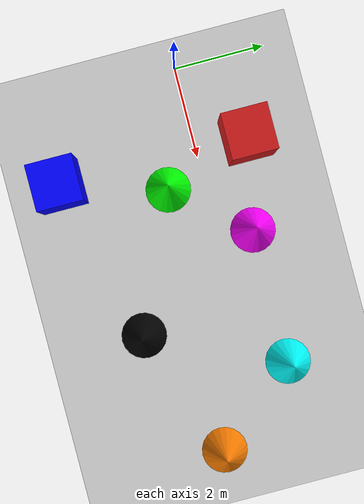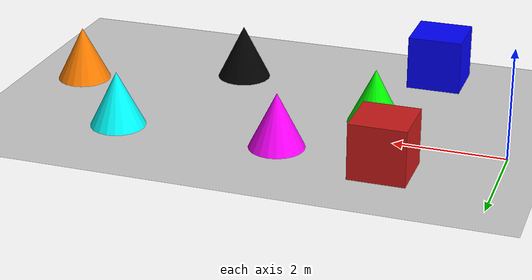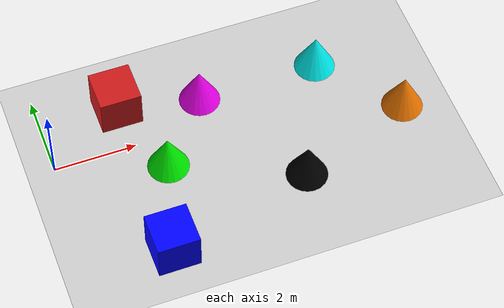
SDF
<sdf version='1.10'>
  <world name='robot_driver_world'>
    <physics name='1ms' type='ignored'>
      <max_step_size>0.001</max_step_size>
      <real_time_factor>1</real_time_factor>
      <real_time_update_rate>1000</real_time_update_rate>
    </physics>
    <plugin name='gz::sim::systems::Physics' filename='gz-sim-physics-system'/>
    <plugin name='gz::sim::systems::Sensors' filename='gz-sim-sensors-system'>
      <render_engine>ogre</render_engine>
    </plugin>
    <plugin name='gz::sim::systems::UserCommands' filename='gz-sim-user-commands-system'/>
    <plugin name='gz::sim::systems::SceneBroadcaster' filename='gz-sim-scene-broadcaster-system'/>
    <plugin name='gz::sim::systems::Contact' filename='gz-sim-contact-system'/>
    <gravity>0 0 -9.8000000000000007</gravity>
    <magnetic_field>5.5644999999999998e-06 2.2875799999999999e-05 -4.2388400000000002e-05</magnetic_field>
    <atmosphere type='adiabatic'/>
    <scene>
      <ambient>0.400000006 0.400000006 0.400000006 1</ambient>
      <background>0.699999988 0.699999988 0.699999988 1</background>
      <shadows>true</shadows>
    </scene>
    <model name='ground_plane'>
      <static>true</static>
      <link name='link'>
        <collision name='collision'>
          <geometry>
            <plane>
              <normal>0 0 1</normal>
              <size>100 100</size>
            </plane>
          </geometry>
          <surface>
            <friction>
              <ode/>
            </friction>
            <bounce/>
            <contact/>
          </surface>
        </collision>
        <visual name='visual'>
          <geometry>
            <plane>
              <normal>0 0 1</normal>
              <size>100 100</size>
            </plane>
          </geometry>
          <material>
            <ambient>0.800000012 0.800000012 0.800000012 1</ambient>
            <diffuse>0.800000012 0.800000012 0.800000012 1</diffuse>
            <specular>0.800000012 0.800000012 0.800000012 1</specular>
          </material>
        </visual>
        <pose>0 0 0 0 0 0</pose>
        <inertial>
          <pose>0 0 0 0 0 0</pose>
          <mass>1</mass>
          <inertia>
            <ixx>1</ixx>
            <ixy>0</ixy>
            <ixz>0</ixz>
            <iyy>1</iyy>
            <iyz>0</iyz>
            <izz>1</izz>
          </inertia>
        </inertial>
        <enable_wind>false</enable_wind>
      </link>
      <pose>0 0 0 0 0 0</pose>
      <self_collide>false</self_collide>
    </model>
    <model name='box'>
      <pose>1.8808799982070923 1.1179466247558594 0.5 0 0 0</pose>
      <link name='box_link'>
        <inertial>
          <inertia>
            <ixx>0.16666</ixx>
            <ixy>0</ixy>
            <ixz>0</ixz>
            <iyy>0.16666</iyy>
            <iyz>0</iyz>
            <izz>0.16666</izz>
          </inertia>
          <mass>1</mass>
          <pose>0 0 0 0 0 0</pose>
        </inertial>
        <collision name='box_collision'>
          <geometry>
            <box>
              <size>1 1 1</size>
            </box>
          </geometry>
          <surface>
            <friction>
              <ode/>
            </friction>
            <bounce/>
            <contact/>
          </surface>
        </collision>
        <visual name='box_visual'>
          <geometry>
            <box>
              <size>1 1 1</size>
            </box>
          </geometry>
          <material>
            <ambient>0.800000012 0.100000001 0.100000001 1</ambient>
            <diffuse>0.800000012 0.100000001 0.100000001 1</diffuse>
            <specular>1 1 1 1</specular>
          </material>
        </visual>
        <pose>0 0 0 0 0 0</pose>
        <enable_wind>false</enable_wind>
      </link>
      <static>false</static>
      <self_collide>false</self_collide>
    </model>
    <model name='cone'>
      <pose>2.5363800525665283 -0.80112278461456299 0.5 0 0 0</pose>
      <link name='cone_link'>
        <inertial>
          <inertia>
            <ixx>0.074999999999999997</ixx>
            <ixy>0</ixy>
            <ixz>0</ixz>
            <iyy>0.074999999999999997</iyy>
            <iyz>0</iyz>
            <izz>0.074999999999999997</izz>
          </inertia>
          <mass>1</mass>
          <pose>0 0 0 0 0 0</pose>
        </inertial>
        <collision name='cone_collision'>
          <geometry>
            <cone>
              <radius>0.5</radius>
              <length>1</length>
            </cone>
          </geometry>
          <surface>
            <friction>
              <ode/>
            </friction>
            <bounce/>
            <contact/>
          </surface>
        </collision>
        <visual name='cone_visual'>
          <geometry>
            <cone>
              <radius>0.5</radius>
              <length>1</length>
            </cone>
          </geometry>
          <material>
            <ambient>0 1 0 1</ambient>
            <diffuse>0 1 0 1</diffuse>
            <specular>1 1 1 1</specular>
          </material>
        </visual>
        <pose>0 0 0 0 0 0</pose>
        <enable_wind>false</enable_wind>
      </link>
      <static>false</static>
      <self_collide>false</self_collide>
    </model>
    <model name='box_0'>
      <pose>1.8804613351821899 -3.0615699291229248 0.5 0 0 0</pose>
      <link name='box_link'>
        <inertial>
          <inertia>
            <ixx>0.16666</ixx>
            <ixy>0</ixy>
            <ixz>0</ixz>
            <iyy>0.16666</iyy>
            <iyz>0</iyz>
            <izz>0.16666</izz>
          </inertia>
          <mass>1</mass>
          <pose>0 0 0 0 0 0</pose>
        </inertial>
        <collision name='box_collision'>
          <geometry>
            <box>
              <size>1 1 1</size>
            </box>
          </geometry>
          <surface>
            <friction>
              <ode/>
            </friction>
            <bounce/>
            <contact/>
          </surface>
        </collision>
        <visual name='box_visual'>
          <geometry>
            <box>
              <size>1 1 1</size>
            </box>
          </geometry>
          <material>
            <ambient>0 0 1 1</ambient>
            <diffuse>0 0 1 1</diffuse>
            <specular>1 1 1 1</specular>
          </material>
        </visual>
        <pose>0 0 0 0 0 0</pose>
        <enable_wind>false</enable_wind>
      </link>
      <static>false</static>
      <self_collide>false</self_collide>
    </model>
    <model name='cone_1'>
      <pose>3.8625099658966064 0.77272200584411621 0.5 0 0 0</pose>
      <link name='cone_link'>
        <inertial>
          <inertia>
            <ixx>0.074999999999999997</ixx>
            <ixy>0</ixy>
            <ixz>0</ixz>
            <iyy>0.074999999999999997</iyy>
            <iyz>0</iyz>
            <izz>0.074999999999999997</izz>
          </inertia>
          <mass>1</mass>
          <pose>0 0 0 0 0 0</pose>
        </inertial>
        <collision name='cone_collision'>
          <geometry>
            <cone>
              <radius>0.5</radius>
              <length>1</length>
            </cone>
          </geometry>
          <surface>
            <friction>
              <ode/>
            </friction>
            <bounce/>
            <contact/>
          </surface>
        </collision>
        <visual name='cone_visual'>
          <geometry>
            <cone>
              <radius>0.5</radius>
              <length>1</length>
            </cone>
          </geometry>
          <material>
            <ambient>1 0 1 1</ambient>
            <diffuse>1 0 1 1</diffuse>
            <specular>1 1 1 1</specular>
          </material>
        </visual>
        <pose>0 0 0 0 0 0</pose>
        <enable_wind>false</enable_wind>
      </link>
      <static>false</static>
      <self_collide>false</self_collide>
    </model>
    <model name='cone_2'>
      <pose>5.4945001602172852 -2.1261203289031982 0.5 0 0 0</pose>
      <link name='cone_link'>
        <inertial>
          <inertia>
            <ixx>0.074999999999999997</ixx>
            <ixy>0</ixy>
            <ixz>0</ixz>
            <iyy>0.074999999999999997</iyy>
            <iyz>0</iyz>
            <izz>0.074999999999999997</izz>
          </inertia>
          <mass>1</mass>
          <pose>0 0 0 0 0 0</pose>
        </inertial>
        <collision name='cone_collision'>
          <geometry>
            <cone>
              <radius>0.5</radius>
              <length>1</length>
            </cone>
          </geometry>
          <surface>
            <friction>
              <ode/>
            </friction>
            <bounce/>
            <contact/>
          </surface>
        </collision>
        <visual name='cone_visual'>
          <geometry>
            <cone>
              <radius>0.5</radius>
              <length>1</length>
            </cone>
          </geometry>
          <material>
            <ambient>0 0 0 1</ambient>
            <diffuse>0 0 0 1</diffuse>
            <specular>1 1 1 1</specular>
          </material>
        </visual>
        <pose>0 0 0 0 0 0</pose>
        <enable_wind>false</enable_wind>
      </link>
      <static>false</static>
      <self_collide>false</self_collide>
    </model>
    <model name='cone_3'>
      <pose>6.8430712037895347 0.78498223336601658 0.5 0 0 0</pose>
      <link name='cone_link'>
        <inertial>
          <inertia>
            <ixx>0.074999999999999997</ixx>
            <ixy>0</ixy>
            <ixz>0</ixz>
            <iyy>0.074999999999999997</iyy>
            <iyz>0</iyz>
            <izz>0.074999999999999997</izz>
          </inertia>
          <mass>1</mass>
          <pose>0 0 0 0 0 0</pose>
        </inertial>
        <collision name='cone_collision'>
          <geometry>
            <cone>
              <radius>0.5</radius>
              <length>1</length>
            </cone>
          </geometry>
          <surface>
            <friction>
              <ode/>
            </friction>
            <bounce/>
            <contact/>
          </surface>
        </collision>
        <visual name='cone_visual'>
          <geometry>
            <cone>
              <radius>0.5</radius>
              <length>1</length>
            </cone>
          </geometry>
          <material>
            <ambient>0 1 1 1</ambient>
            <diffuse>0 1 1 1</diffuse>
            <specular>1 1 1 1</specular>
          </material>
        </visual>
        <pose>0 0 0 0 0 0</pose>
        <enable_wind>false</enable_wind>
      </link>
      <static>false</static>
      <self_collide>false</self_collide>
    </model>
    <model name='cone_4'>
      <pose>8.3753900527954102 -1.0539718866348267 0.5 0 0 0</pose>
      <link name='cone_link'>
        <inertial>
          <inertia>
            <ixx>0.074999999999999997</ixx>
            <ixy>0</ixy>
            <ixz>0</ixz>
            <iyy>0.074999999999999997</iyy>
            <iyz>0</iyz>
            <izz>0.074999999999999997</izz>
          </inertia>
          <mass>1</mass>
          <pose>0 0 0 0 0 0</pose>
        </inertial>
        <collision name='cone_collision'>
          <geometry>
            <cone>
              <radius>0.5</radius>
              <length>1</length>
            </cone>
          </geometry>
          <surface>
            <friction>
              <ode/>
            </friction>
            <bounce/>
            <contact/>
          </surface>
        </collision>
        <visual name='cone_visual'>
          <geometry>
            <cone>
              <radius>0.5</radius>
              <length>1</length>
            </cone>
          </geometry>
          <material>
            <ambient>1 0.5 0 1</ambient>
            <diffuse>1 0.5 0 1</diffuse>
            <specular>1 1 1 1</specular>
          </material>
        </visual>
        <pose>0 0 0 0 0 0</pose>
        <enable_wind>false</enable_wind>
      </link>
      <static>false</static>
      <self_collide>false</self_collide>
    </model>
    <light name='sun' type='directional'>
      <pose>0 0 10 0 0 0</pose>
      <cast_shadows>true</cast_shadows>
      <intensity>1</intensity>
      <direction>-0.5 0.10000000000000001 -0.90000000000000002</direction>
      <diffuse>0.800000012 0.800000012 0.800000012 1</diffuse>
      <specular>0.200000003 0.200000003 0.200000003 1</specular>
      <attenuation>
        <range>1000</range>
        <linear>0.01</linear>
        <constant>0.90000000000000002</constant>
        <quadratic>0.001</quadratic>
      </attenuation>
      <spot>
        <inner_angle>0</inner_angle>
        <outer_angle>0</outer_angle>
        <falloff>0</falloff>
      </spot>
    </light>
  </world>
</sdf>
